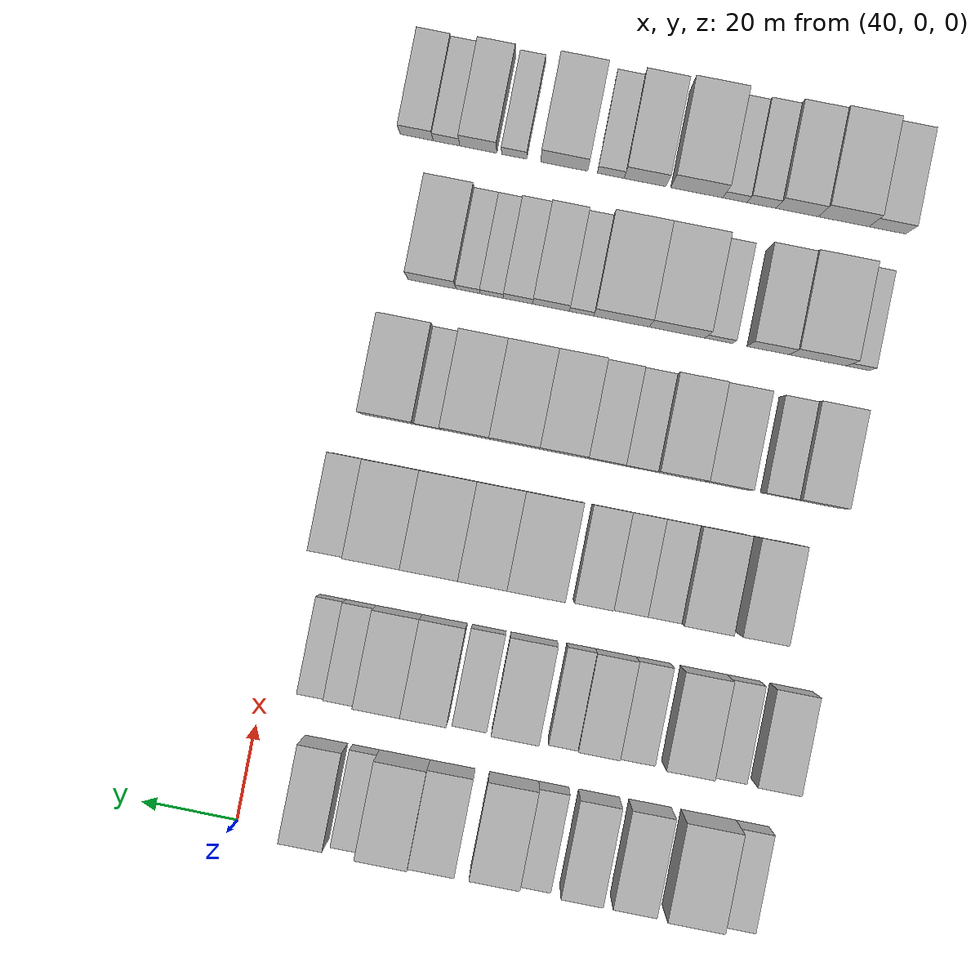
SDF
<sdf version="1.6">
 <world name="default">
  <model name="building_47">
   <static>1</static>
   <pose>50.0000 -104.0275 0 0.000000 0.000000 0.000000</pose>
   <link name="link">
    <pose>0 0 7.50 0 0 0</pose>
    <collision name="collision"><geometry><box><size>20.0000 6.8438 15.0000</size></box></geometry></collision>
    <visual name="visual">
     <cast_shadows>0</cast_shadows>
     <geometry><box><size>20.0000 6.8438 15.0000</size></box></geometry>
     <material>
      <script>
       <uri>model://HANNAS_wall/materials/scripts</uri>
       <uri>model://HANNAS_wall/materials/textures</uri>
       <name>vrc/HANNAS_wall</name>
      </script>
     </material>
    </visual>
   </link>
  </model>
  <model name="building_48">
   <static>1</static>
   <pose>50.0000 -94.8012 0 0.000000 0.000000 0.000000</pose>
   <link name="link">
    <pose>0 0 12.00 0 0 0</pose>
    <collision name="collision"><geometry><box><size>20.0000 11.6089 24.0000</size></box></geometry></collision>
    <visual name="visual">
     <cast_shadows>0</cast_shadows>
     <geometry><box><size>20.0000 11.6089 24.0000</size></box></geometry>
     <material>
      <script>
       <uri>model://HANNAS_wall/materials/scripts</uri>
       <uri>model://HANNAS_wall/materials/textures</uri>
       <name>vrc/HANNAS_wall</name>
      </script>
     </material>
    </visual>
   </link>
  </model>
  <model name="building_49">
   <static>1</static>
   <pose>50.0000 -82.5573 0 0.000000 0.000000 0.000000</pose>
   <link name="link">
    <pose>0 0 10.50 0 0 0</pose>
    <collision name="collision"><geometry><box><size>20.0000 8.8788 21.0000</size></box></geometry></collision>
    <visual name="visual">
     <cast_shadows>0</cast_shadows>
     <geometry><box><size>20.0000 8.8788 21.0000</size></box></geometry>
     <material>
      <script>
       <uri>model://HANNAS_wall/materials/scripts</uri>
       <uri>model://HANNAS_wall/materials/textures</uri>
       <name>vrc/HANNAS_wall</name>
      </script>
     </material>
    </visual>
   </link>
  </model>
  <model name="building_50">
   <static>1</static>
   <pose>50.0000 -71.8427 0 0.000000 0.000000 0.000000</pose>
   <link name="link">
    <pose>0 0 10.50 0 0 0</pose>
    <collision name="collision"><geometry><box><size>20.0000 8.5504 21.0000</size></box></geometry></collision>
    <visual name="visual">
     <cast_shadows>0</cast_shadows>
     <geometry><box><size>20.0000 8.5504 21.0000</size></box></geometry>
     <material>
      <script>
       <uri>model://HANNAS_wall/materials/scripts</uri>
       <uri>model://HANNAS_wall/materials/textures</uri>
       <name>vrc/HANNAS_wall</name>
      </script>
     </material>
    </visual>
   </link>
  </model>
  <model name="building_51">
   <static>1</static>
   <pose>50.0000 -62.4116 0 0.000000 0.000000 0.000000</pose>
   <link name="link">
    <pose>0 0 7.50 0 0 0</pose>
    <collision name="collision"><geometry><box><size>20.0000 6.3117 15.0000</size></box></geometry></collision>
    <visual name="visual">
     <cast_shadows>0</cast_shadows>
     <geometry><box><size>20.0000 6.3117 15.0000</size></box></geometry>
     <material>
      <script>
       <uri>model://HANNAS_wall/materials/scripts</uri>
       <uri>model://HANNAS_wall/materials/textures</uri>
       <name>vrc/HANNAS_wall</name>
      </script>
     </material>
    </visual>
   </link>
  </model>
  <model name="building_52">
   <static>1</static>
   <pose>50.0000 -54.0903 0 0.000000 0.000000 0.000000</pose>
   <link name="link">
    <pose>0 0 10.50 0 0 0</pose>
    <collision name="collision"><geometry><box><size>20.0000 10.3308 21.0000</size></box></geometry></collision>
    <visual name="visual">
     <cast_shadows>0</cast_shadows>
     <geometry><box><size>20.0000 10.3308 21.0000</size></box></geometry>
     <material>
      <script>
       <uri>model://HANNAS_wall/materials/scripts</uri>
       <uri>model://HANNAS_wall/materials/textures</uri>
       <name>vrc/HANNAS_wall</name>
      </script>
     </material>
    </visual>
   </link>
  </model>
  <model name="building_53">
   <static>1</static>
   <pose>50.0000 -41.2274 0 0.000000 0.000000 0.000000</pose>
   <link name="link">
    <pose>0 0 10.50 0 0 0</pose>
    <collision name="collision"><geometry><box><size>20.0000 9.3950 21.0000</size></box></geometry></collision>
    <visual name="visual">
     <cast_shadows>0</cast_shadows>
     <geometry><box><size>20.0000 9.3950 21.0000</size></box></geometry>
     <material>
      <script>
       <uri>model://HANNAS_wall/materials/scripts</uri>
       <uri>model://HANNAS_wall/materials/textures</uri>
       <name>vrc/HANNAS_wall</name>
      </script>
     </material>
    </visual>
   </link>
  </model>
  <model name="building_54">
   <static>1</static>
   <pose>50.0000 -31.1987 0 0.000000 0.000000 0.000000</pose>
   <link name="link">
    <pose>0 0 12.00 0 0 0</pose>
    <collision name="collision"><geometry><box><size>20.0000 10.6625 24.0000</size></box></geometry></collision>
    <visual name="visual">
     <cast_shadows>0</cast_shadows>
     <geometry><box><size>20.0000 10.6625 24.0000</size></box></geometry>
     <material>
      <script>
       <uri>model://HANNAS_wall/materials/scripts</uri>
       <uri>model://HANNAS_wall/materials/textures</uri>
       <name>vrc/HANNAS_wall</name>
      </script>
     </material>
    </visual>
   </link>
  </model>
  <model name="building_55">
   <static>1</static>
   <pose>50.0000 -23.0566 0 0.000000 0.000000 0.000000</pose>
   <link name="link">
    <pose>0 0 6.00 0 0 0</pose>
    <collision name="collision"><geometry><box><size>20.0000 5.6216 12.0000</size></box></geometry></collision>
    <visual name="visual">
     <cast_shadows>0</cast_shadows>
     <geometry><box><size>20.0000 5.6216 12.0000</size></box></geometry>
     <material>
      <script>
       <uri>model://HANNAS_wall/materials/scripts</uri>
       <uri>model://HANNAS_wall/materials/textures</uri>
       <name>vrc/HANNAS_wall</name>
      </script>
     </material>
    </visual>
   </link>
  </model>
  <model name="building_56">
   <static>1</static>
   <pose>50.0000 -14.7755 0 0.000000 0.000000 0.000000</pose>
   <link name="link">
    <pose>0 0 10.50 0 0 0</pose>
    <collision name="collision"><geometry><box><size>20.0000 8.9406 21.0000</size></box></geometry></collision>
    <visual name="visual">
     <cast_shadows>0</cast_shadows>
     <geometry><box><size>20.0000 8.9406 21.0000</size></box></geometry>
     <material>
      <script>
       <uri>model://HANNAS_wall/materials/scripts</uri>
       <uri>model://HANNAS_wall/materials/textures</uri>
       <name>vrc/HANNAS_wall</name>
      </script>
     </material>
    </visual>
   </link>
  </model>
  <model name="building_158">
   <static>1</static>
   <pose>79.0000 -106.3740 0 0.000000 0.000000 0.000000</pose>
   <link name="link">
    <pose>0 0 9.00 0 0 0</pose>
    <collision name="collision"><geometry><box><size>20.0000 8.9425 18.0000</size></box></geometry></collision>
    <visual name="visual">
     <cast_shadows>0</cast_shadows>
     <geometry><box><size>20.0000 8.9425 18.0000</size></box></geometry>
     <material>
      <script>
       <uri>model://HANNAS_wall/materials/scripts</uri>
       <uri>model://HANNAS_wall/materials/textures</uri>
       <name>vrc/HANNAS_wall</name>
      </script>
     </material>
    </visual>
   </link>
  </model>
  <model name="building_159">
   <static>1</static>
   <pose>79.0000 -96.4477 0 0.000000 0.000000 0.000000</pose>
   <link name="link">
    <pose>0 0 7.50 0 0 0</pose>
    <collision name="collision"><geometry><box><size>20.0000 6.9102 15.0000</size></box></geometry></collision>
    <visual name="visual">
     <cast_shadows>0</cast_shadows>
     <geometry><box><size>20.0000 6.9102 15.0000</size></box></geometry>
     <material>
      <script>
       <uri>model://HANNAS_wall/materials/scripts</uri>
       <uri>model://HANNAS_wall/materials/textures</uri>
       <name>vrc/HANNAS_wall</name>
      </script>
     </material>
    </visual>
   </link>
  </model>
  <model name="building_160">
   <static>1</static>
   <pose>79.0000 -88.0792 0 0.000000 0.000000 0.000000</pose>
   <link name="link">
    <pose>0 0 10.50 0 0 0</pose>
    <collision name="collision"><geometry><box><size>20.0000 9.8268 21.0000</size></box></geometry></collision>
    <visual name="visual">
     <cast_shadows>0</cast_shadows>
     <geometry><box><size>20.0000 9.8268 21.0000</size></box></geometry>
     <material>
      <script>
       <uri>model://HANNAS_wall/materials/scripts</uri>
       <uri>model://HANNAS_wall/materials/textures</uri>
       <name>vrc/HANNAS_wall</name>
      </script>
     </material>
    </visual>
   </link>
  </model>
  <model name="building_161">
   <static>1</static>
   <pose>79.0000 -77.5541 0 0.000000 0.000000 0.000000</pose>
   <link name="link">
    <pose>0 0 7.50 0 0 0</pose>
    <collision name="collision"><geometry><box><size>20.0000 7.2233 15.0000</size></box></geometry></collision>
    <visual name="visual">
     <cast_shadows>0</cast_shadows>
     <geometry><box><size>20.0000 7.2233 15.0000</size></box></geometry>
     <material>
      <script>
       <uri>model://HANNAS_wall/materials/scripts</uri>
       <uri>model://HANNAS_wall/materials/textures</uri>
       <name>vrc/HANNAS_wall</name>
      </script>
     </material>
    </visual>
   </link>
  </model>
  <model name="building_162">
   <static>1</static>
   <pose>79.0000 -69.6732 0 0.000000 0.000000 0.000000</pose>
   <link name="link">
    <pose>0 0 9.00 0 0 0</pose>
    <collision name="collision"><geometry><box><size>20.0000 8.5386 18.0000</size></box></geometry></collision>
    <visual name="visual">
     <cast_shadows>0</cast_shadows>
     <geometry><box><size>20.0000 8.5386 18.0000</size></box></geometry>
     <material>
      <script>
       <uri>model://HANNAS_wall/materials/scripts</uri>
       <uri>model://HANNAS_wall/materials/textures</uri>
       <name>vrc/HANNAS_wall</name>
      </script>
     </material>
    </visual>
   </link>
  </model>
  <model name="building_163">
   <static>1</static>
   <pose>79.0000 -62.3945 0 0.000000 0.000000 0.000000</pose>
   <link name="link">
    <pose>0 0 7.50 0 0 0</pose>
    <collision name="collision"><geometry><box><size>20.0000 6.0186 15.0000</size></box></geometry></collision>
    <visual name="visual">
     <cast_shadows>0</cast_shadows>
     <geometry><box><size>20.0000 6.0186 15.0000</size></box></geometry>
     <material>
      <script>
       <uri>model://HANNAS_wall/materials/scripts</uri>
       <uri>model://HANNAS_wall/materials/textures</uri>
       <name>vrc/HANNAS_wall</name>
      </script>
     </material>
    </visual>
   </link>
  </model>
  <model name="building_164">
   <static>1</static>
   <pose>79.0000 -52.5461 0 0.000000 0.000000 0.000000</pose>
   <link name="link">
    <pose>0 0 10.50 0 0 0</pose>
    <collision name="collision"><geometry><box><size>20.0000 9.6782 21.0000</size></box></geometry></collision>
    <visual name="visual">
     <cast_shadows>0</cast_shadows>
     <geometry><box><size>20.0000 9.6782 21.0000</size></box></geometry>
     <material>
      <script>
       <uri>model://HANNAS_wall/materials/scripts</uri>
       <uri>model://HANNAS_wall/materials/textures</uri>
       <name>vrc/HANNAS_wall</name>
      </script>
     </material>
    </visual>
   </link>
  </model>
  <model name="building_165">
   <static>1</static>
   <pose>79.0000 -43.1634 0 0.000000 0.000000 0.000000</pose>
   <link name="link">
    <pose>0 0 7.50 0 0 0</pose>
    <collision name="collision"><geometry><box><size>20.0000 7.0872 15.0000</size></box></geometry></collision>
    <visual name="visual">
     <cast_shadows>0</cast_shadows>
     <geometry><box><size>20.0000 7.0872 15.0000</size></box></geometry>
     <material>
      <script>
       <uri>model://HANNAS_wall/materials/scripts</uri>
       <uri>model://HANNAS_wall/materials/textures</uri>
       <name>vrc/HANNAS_wall</name>
      </script>
     </material>
    </visual>
   </link>
  </model>
  <model name="building_166">
   <static>1</static>
   <pose>79.0000 -33.9154 0 0.000000 0.000000 0.000000</pose>
   <link name="link">
    <pose>0 0 10.50 0 0 0</pose>
    <collision name="collision"><geometry><box><size>20.0000 9.4089 21.0000</size></box></geometry></collision>
    <visual name="visual">
     <cast_shadows>0</cast_shadows>
     <geometry><box><size>20.0000 9.4089 21.0000</size></box></geometry>
     <material>
      <script>
       <uri>model://HANNAS_wall/materials/scripts</uri>
       <uri>model://HANNAS_wall/materials/textures</uri>
       <name>vrc/HANNAS_wall</name>
      </script>
     </material>
    </visual>
   </link>
  </model>
  <model name="building_167">
   <static>1</static>
   <pose>79.0000 -24.3999 0 0.000000 0.000000 0.000000</pose>
   <link name="link">
    <pose>0 0 10.50 0 0 0</pose>
    <collision name="collision"><geometry><box><size>20.0000 9.6222 21.0000</size></box></geometry></collision>
    <visual name="visual">
     <cast_shadows>0</cast_shadows>
     <geometry><box><size>20.0000 9.6222 21.0000</size></box></geometry>
     <material>
      <script>
       <uri>model://HANNAS_wall/materials/scripts</uri>
       <uri>model://HANNAS_wall/materials/textures</uri>
       <name>vrc/HANNAS_wall</name>
      </script>
     </material>
    </visual>
   </link>
  </model>
  <model name="building_168">
   <static>1</static>
   <pose>79.0000 -16.4338 0 0.000000 0.000000 0.000000</pose>
   <link name="link">
    <pose>0 0 7.50 0 0 0</pose>
    <collision name="collision"><geometry><box><size>20.0000 6.3099 15.0000</size></box></geometry></collision>
    <visual name="visual">
     <cast_shadows>0</cast_shadows>
     <geometry><box><size>20.0000 6.3099 15.0000</size></box></geometry>
     <material>
      <script>
       <uri>model://HANNAS_wall/materials/scripts</uri>
       <uri>model://HANNAS_wall/materials/textures</uri>
       <name>vrc/HANNAS_wall</name>
      </script>
     </material>
    </visual>
   </link>
  </model>
  <model name="building_169">
   <static>1</static>
   <pose>79.0000 -10.4634 0 0.000000 0.000000 0.000000</pose>
   <link name="link">
    <pose>0 0 6.00 0 0 0</pose>
    <collision name="collision"><geometry><box><size>20.0000 5.6307 12.0000</size></box></geometry></collision>
    <visual name="visual">
     <cast_shadows>0</cast_shadows>
     <geometry><box><size>20.0000 5.6307 12.0000</size></box></geometry>
     <material>
      <script>
       <uri>model://HANNAS_wall/materials/scripts</uri>
       <uri>model://HANNAS_wall/materials/textures</uri>
       <name>vrc/HANNAS_wall</name>
      </script>
     </material>
    </visual>
   </link>
  </model>
  <model name="building_273">
   <static>1</static>
   <pose>108.0000 -97.6003 0 0.000000 0.000000 0.000000</pose>
   <link name="link">
    <pose>0 0 10.50 0 0 0</pose>
    <collision name="collision"><geometry><box><size>20.0000 9.4315 21.0000</size></box></geometry></collision>
    <visual name="visual">
     <cast_shadows>0</cast_shadows>
     <geometry><box><size>20.0000 9.4315 21.0000</size></box></geometry>
     <material>
      <script>
       <uri>model://HANNAS_wall/materials/scripts</uri>
       <uri>model://HANNAS_wall/materials/textures</uri>
       <name>vrc/HANNAS_wall</name>
      </script>
     </material>
    </visual>
   </link>
  </model>
  <model name="building_274">
   <static>1</static>
   <pose>108.0000 -85.8701 0 0.000000 0.000000 0.000000</pose>
   <link name="link">
    <pose>0 0 12.00 0 0 0</pose>
    <collision name="collision"><geometry><box><size>20.0000 10.0287 24.0000</size></box></geometry></collision>
    <visual name="visual">
     <cast_shadows>0</cast_shadows>
     <geometry><box><size>20.0000 10.0287 24.0000</size></box></geometry>
     <material>
      <script>
       <uri>model://HANNAS_wall/materials/scripts</uri>
       <uri>model://HANNAS_wall/materials/textures</uri>
       <name>vrc/HANNAS_wall</name>
      </script>
     </material>
    </visual>
   </link>
  </model>
  <model name="building_275">
   <static>1</static>
   <pose>108.0000 -77.4149 0 0.000000 0.000000 0.000000</pose>
   <link name="link">
    <pose>0 0 7.50 0 0 0</pose>
    <collision name="collision"><geometry><box><size>20.0000 6.8818 15.0000</size></box></geometry></collision>
    <visual name="visual">
     <cast_shadows>0</cast_shadows>
     <geometry><box><size>20.0000 6.8818 15.0000</size></box></geometry>
     <material>
      <script>
       <uri>model://HANNAS_wall/materials/scripts</uri>
       <uri>model://HANNAS_wall/materials/textures</uri>
       <name>vrc/HANNAS_wall</name>
      </script>
     </material>
    </visual>
   </link>
  </model>
  <model name="building_276">
   <static>1</static>
   <pose>108.0000 -70.4315 0 0.000000 0.000000 0.000000</pose>
   <link name="link">
    <pose>0 0 7.50 0 0 0</pose>
    <collision name="collision"><geometry><box><size>20.0000 7.0849 15.0000</size></box></geometry></collision>
    <visual name="visual">
     <cast_shadows>0</cast_shadows>
     <geometry><box><size>20.0000 7.0849 15.0000</size></box></geometry>
     <material>
      <script>
       <uri>model://HANNAS_wall/materials/scripts</uri>
       <uri>model://HANNAS_wall/materials/textures</uri>
       <name>vrc/HANNAS_wall</name>
      </script>
     </material>
    </visual>
   </link>
  </model>
  <model name="building_277">
   <static>1</static>
   <pose>108.0000 -62.9031 0 0.000000 0.000000 0.000000</pose>
   <link name="link">
    <pose>0 0 9.00 0 0 0</pose>
    <collision name="collision"><geometry><box><size>20.0000 7.9720 18.0000</size></box></geometry></collision>
    <visual name="visual">
     <cast_shadows>0</cast_shadows>
     <geometry><box><size>20.0000 7.9720 18.0000</size></box></geometry>
     <material>
      <script>
       <uri>model://HANNAS_wall/materials/scripts</uri>
       <uri>model://HANNAS_wall/materials/textures</uri>
       <name>vrc/HANNAS_wall</name>
      </script>
     </material>
    </visual>
   </link>
  </model>
  <model name="building_278">
   <static>1</static>
   <pose>108.0000 -51.0551 0 0.000000 0.000000 0.000000</pose>
   <link name="link">
    <pose>0 0 12.00 0 0 0</pose>
    <collision name="collision"><geometry><box><size>20.0000 11.7241 24.0000</size></box></geometry></collision>
    <visual name="visual">
     <cast_shadows>0</cast_shadows>
     <geometry><box><size>20.0000 11.7241 24.0000</size></box></geometry>
     <material>
      <script>
       <uri>model://HANNAS_wall/materials/scripts</uri>
       <uri>model://HANNAS_wall/materials/textures</uri>
       <name>vrc/HANNAS_wall</name>
      </script>
     </material>
    </visual>
   </link>
  </model>
  <model name="building_279">
   <static>1</static>
   <pose>108.0000 -40.2306 0 0.000000 0.000000 0.000000</pose>
   <link name="link">
    <pose>0 0 12.00 0 0 0</pose>
    <collision name="collision"><geometry><box><size>20.0000 9.9248 24.0000</size></box></geometry></collision>
    <visual name="visual">
     <cast_shadows>0</cast_shadows>
     <geometry><box><size>20.0000 9.9248 24.0000</size></box></geometry>
     <material>
      <script>
       <uri>model://HANNAS_wall/materials/scripts</uri>
       <uri>model://HANNAS_wall/materials/textures</uri>
       <name>vrc/HANNAS_wall</name>
      </script>
     </material>
    </visual>
   </link>
  </model>
  <model name="building_280">
   <static>1</static>
   <pose>108.0000 -29.4153 0 0.000000 0.000000 0.000000</pose>
   <link name="link">
    <pose>0 0 12.00 0 0 0</pose>
    <collision name="collision"><geometry><box><size>20.0000 11.7057 24.0000</size></box></geometry></collision>
    <visual name="visual">
     <cast_shadows>0</cast_shadows>
     <geometry><box><size>20.0000 11.7057 24.0000</size></box></geometry>
     <material>
      <script>
       <uri>model://HANNAS_wall/materials/scripts</uri>
       <uri>model://HANNAS_wall/materials/textures</uri>
       <name>vrc/HANNAS_wall</name>
      </script>
     </material>
    </visual>
   </link>
  </model>
  <model name="building_281">
   <static>1</static>
   <pose>108.0000 -17.7863 0 0.000000 0.000000 0.000000</pose>
   <link name="link">
    <pose>0 0 12.00 0 0 0</pose>
    <collision name="collision"><geometry><box><size>20.0000 11.5524 24.0000</size></box></geometry></collision>
    <visual name="visual">
     <cast_shadows>0</cast_shadows>
     <geometry><box><size>20.0000 11.5524 24.0000</size></box></geometry>
     <material>
      <script>
       <uri>model://HANNAS_wall/materials/scripts</uri>
       <uri>model://HANNAS_wall/materials/textures</uri>
       <name>vrc/HANNAS_wall</name>
      </script>
     </material>
    </visual>
   </link>
  </model>
  <model name="building_282">
   <static>1</static>
   <pose>108.0000 -8.2903 0 0.000000 0.000000 0.000000</pose>
   <link name="link">
    <pose>0 0 9.00 0 0 0</pose>
    <collision name="collision"><geometry><box><size>20.0000 7.4397 18.0000</size></box></geometry></collision>
    <visual name="visual">
     <cast_shadows>0</cast_shadows>
     <geometry><box><size>20.0000 7.4397 18.0000</size></box></geometry>
     <material>
      <script>
       <uri>model://HANNAS_wall/materials/scripts</uri>
       <uri>model://HANNAS_wall/materials/textures</uri>
       <name>vrc/HANNAS_wall</name>
      </script>
     </material>
    </visual>
   </link>
  </model>
  <model name="building_380">
   <static>1</static>
   <pose>137.0000 -104.0986 0 0.000000 0.000000 0.000000</pose>
   <link name="link">
    <pose>0 0 10.50 0 0 0</pose>
    <collision name="collision"><geometry><box><size>20.0000 9.6535 21.0000</size></box></geometry></collision>
    <visual name="visual">
     <cast_shadows>0</cast_shadows>
     <geometry><box><size>20.0000 9.6535 21.0000</size></box></geometry>
     <material>
      <script>
       <uri>model://HANNAS_wall/materials/scripts</uri>
       <uri>model://HANNAS_wall/materials/textures</uri>
       <name>vrc/HANNAS_wall</name>
      </script>
     </material>
    </visual>
   </link>
  </model>
  <model name="building_381">
   <static>1</static>
   <pose>137.0000 -95.8553 0 0.000000 0.000000 0.000000</pose>
   <link name="link">
    <pose>0 0 7.50 0 0 0</pose>
    <collision name="collision"><geometry><box><size>20.0000 6.8331 15.0000</size></box></geometry></collision>
    <visual name="visual">
     <cast_shadows>0</cast_shadows>
     <geometry><box><size>20.0000 6.8331 15.0000</size></box></geometry>
     <material>
      <script>
       <uri>model://HANNAS_wall/materials/scripts</uri>
       <uri>model://HANNAS_wall/materials/textures</uri>
       <name>vrc/HANNAS_wall</name>
      </script>
     </material>
    </visual>
   </link>
  </model>
  <model name="building_382">
   <static>1</static>
   <pose>137.0000 -84.8691 0 0.000000 0.000000 0.000000</pose>
   <link name="link">
    <pose>0 0 10.50 0 0 0</pose>
    <collision name="collision"><geometry><box><size>20.0000 9.1394 21.0000</size></box></geometry></collision>
    <visual name="visual">
     <cast_shadows>0</cast_shadows>
     <geometry><box><size>20.0000 9.1394 21.0000</size></box></geometry>
     <material>
      <script>
       <uri>model://HANNAS_wall/materials/scripts</uri>
       <uri>model://HANNAS_wall/materials/textures</uri>
       <name>vrc/HANNAS_wall</name>
      </script>
     </material>
    </visual>
   </link>
  </model>
  <model name="building_383">
   <static>1</static>
   <pose>137.0000 -75.3482 0 0.000000 0.000000 0.000000</pose>
   <link name="link">
    <pose>0 0 12.00 0 0 0</pose>
    <collision name="collision"><geometry><box><size>20.0000 9.9024 24.0000</size></box></geometry></collision>
    <visual name="visual">
     <cast_shadows>0</cast_shadows>
     <geometry><box><size>20.0000 9.9024 24.0000</size></box></geometry>
     <material>
      <script>
       <uri>model://HANNAS_wall/materials/scripts</uri>
       <uri>model://HANNAS_wall/materials/textures</uri>
       <name>vrc/HANNAS_wall</name>
      </script>
     </material>
    </visual>
   </link>
  </model>
  <model name="building_384">
   <static>1</static>
   <pose>137.0000 -67.0663 0 0.000000 0.000000 0.000000</pose>
   <link name="link">
    <pose>0 0 7.50 0 0 0</pose>
    <collision name="collision"><geometry><box><size>20.0000 6.6614 15.0000</size></box></geometry></collision>
    <visual name="visual">
     <cast_shadows>0</cast_shadows>
     <geometry><box><size>20.0000 6.6614 15.0000</size></box></geometry>
     <material>
      <script>
       <uri>model://HANNAS_wall/materials/scripts</uri>
       <uri>model://HANNAS_wall/materials/textures</uri>
       <name>vrc/HANNAS_wall</name>
      </script>
     </material>
    </visual>
   </link>
  </model>
  <model name="building_385">
   <static>1</static>
   <pose>137.0000 -59.8821 0 0.000000 0.000000 0.000000</pose>
   <link name="link">
    <pose>0 0 9.00 0 0 0</pose>
    <collision name="collision"><geometry><box><size>20.0000 7.7068 18.0000</size></box></geometry></collision>
    <visual name="visual">
     <cast_shadows>0</cast_shadows>
     <geometry><box><size>20.0000 7.7068 18.0000</size></box></geometry>
     <material>
      <script>
       <uri>model://HANNAS_wall/materials/scripts</uri>
       <uri>model://HANNAS_wall/materials/textures</uri>
       <name>vrc/HANNAS_wall</name>
      </script>
     </material>
    </visual>
   </link>
  </model>
  <model name="building_386">
   <static>1</static>
   <pose>137.0000 -51.0904 0 0.000000 0.000000 0.000000</pose>
   <link name="link">
    <pose>0 0 12.00 0 0 0</pose>
    <collision name="collision"><geometry><box><size>20.0000 9.8766 24.0000</size></box></geometry></collision>
    <visual name="visual">
     <cast_shadows>0</cast_shadows>
     <geometry><box><size>20.0000 9.8766 24.0000</size></box></geometry>
     <material>
      <script>
       <uri>model://HANNAS_wall/materials/scripts</uri>
       <uri>model://HANNAS_wall/materials/textures</uri>
       <name>vrc/HANNAS_wall</name>
      </script>
     </material>
    </visual>
   </link>
  </model>
  <model name="building_387">
   <static>1</static>
   <pose>137.0000 -40.9889 0 0.000000 0.000000 0.000000</pose>
   <link name="link">
    <pose>0 0 12.00 0 0 0</pose>
    <collision name="collision"><geometry><box><size>20.0000 10.3264 24.0000</size></box></geometry></collision>
    <visual name="visual">
     <cast_shadows>0</cast_shadows>
     <geometry><box><size>20.0000 10.3264 24.0000</size></box></geometry>
     <material>
      <script>
       <uri>model://HANNAS_wall/materials/scripts</uri>
       <uri>model://HANNAS_wall/materials/textures</uri>
       <name>vrc/HANNAS_wall</name>
      </script>
     </material>
    </visual>
   </link>
  </model>
  <model name="building_388">
   <static>1</static>
   <pose>137.0000 -30.7949 0 0.000000 0.000000 0.000000</pose>
   <link name="link">
    <pose>0 0 12.00 0 0 0</pose>
    <collision name="collision"><geometry><box><size>20.0000 10.0615 24.0000</size></box></geometry></collision>
    <visual name="visual">
     <cast_shadows>0</cast_shadows>
     <geometry><box><size>20.0000 10.0615 24.0000</size></box></geometry>
     <material>
      <script>
       <uri>model://HANNAS_wall/materials/scripts</uri>
       <uri>model://HANNAS_wall/materials/textures</uri>
       <name>vrc/HANNAS_wall</name>
      </script>
     </material>
    </visual>
   </link>
  </model>
  <model name="building_389">
   <static>1</static>
   <pose>137.0000 -23.0098 0 0.000000 0.000000 0.000000</pose>
   <link name="link">
    <pose>0 0 6.00 0 0 0</pose>
    <collision name="collision"><geometry><box><size>20.0000 5.5087 12.0000</size></box></geometry></collision>
    <visual name="visual">
     <cast_shadows>0</cast_shadows>
     <geometry><box><size>20.0000 5.5087 12.0000</size></box></geometry>
     <material>
      <script>
       <uri>model://HANNAS_wall/materials/scripts</uri>
       <uri>model://HANNAS_wall/materials/textures</uri>
       <name>vrc/HANNAS_wall</name>
      </script>
     </material>
    </visual>
   </link>
  </model>
  <model name="building_390">
   <static>1</static>
   <pose>137.0000 -14.7301 0 0.000000 0.000000 0.000000</pose>
   <link name="link">
    <pose>0 0 12.00 0 0 0</pose>
    <collision name="collision"><geometry><box><size>20.0000 11.0506 24.0000</size></box></geometry></collision>
    <visual name="visual">
     <cast_shadows>0</cast_shadows>
     <geometry><box><size>20.0000 11.0506 24.0000</size></box></geometry>
     <material>
      <script>
       <uri>model://HANNAS_wall/materials/scripts</uri>
       <uri>model://HANNAS_wall/materials/textures</uri>
       <name>vrc/HANNAS_wall</name>
      </script>
     </material>
    </visual>
   </link>
  </model>
  <model name="building_493">
   <static>1</static>
   <pose>166.0000 -107.1820 0 0.000000 0.000000 0.000000</pose>
   <link name="link">
    <pose>0 0 6.00 0 0 0</pose>
    <collision name="collision"><geometry><box><size>20.0000 4.9396 12.0000</size></box></geometry></collision>
    <visual name="visual">
     <cast_shadows>0</cast_shadows>
     <geometry><box><size>20.0000 4.9396 12.0000</size></box></geometry>
     <material>
      <script>
       <uri>model://HANNAS_wall/materials/scripts</uri>
       <uri>model://HANNAS_wall/materials/textures</uri>
       <name>vrc/HANNAS_wall</name>
      </script>
     </material>
    </visual>
   </link>
  </model>
  <model name="building_494">
   <static>1</static>
   <pose>166.0000 -98.7192 0 0.000000 0.000000 0.000000</pose>
   <link name="link">
    <pose>0 0 12.00 0 0 0</pose>
    <collision name="collision"><geometry><box><size>20.0000 11.9861 24.0000</size></box></geometry></collision>
    <visual name="visual">
     <cast_shadows>0</cast_shadows>
     <geometry><box><size>20.0000 11.9861 24.0000</size></box></geometry>
     <material>
      <script>
       <uri>model://HANNAS_wall/materials/scripts</uri>
       <uri>model://HANNAS_wall/materials/textures</uri>
       <name>vrc/HANNAS_wall</name>
      </script>
     </material>
    </visual>
   </link>
  </model>
  <model name="building_495">
   <static>1</static>
   <pose>166.0000 -88.3262 0 0.000000 0.000000 0.000000</pose>
   <link name="link">
    <pose>0 0 10.50 0 0 0</pose>
    <collision name="collision"><geometry><box><size>20.0000 8.7999 21.0000</size></box></geometry></collision>
    <visual name="visual">
     <cast_shadows>0</cast_shadows>
     <geometry><box><size>20.0000 8.7999 21.0000</size></box></geometry>
     <material>
      <script>
       <uri>model://HANNAS_wall/materials/scripts</uri>
       <uri>model://HANNAS_wall/materials/textures</uri>
       <name>vrc/HANNAS_wall</name>
      </script>
     </material>
    </visual>
   </link>
  </model>
  <model name="building_496">
   <static>1</static>
   <pose>166.0000 -78.0328 0 0.000000 0.000000 0.000000</pose>
   <link name="link">
    <pose>0 0 6.00 0 0 0</pose>
    <collision name="collision"><geometry><box><size>20.0000 5.7869 12.0000</size></box></geometry></collision>
    <visual name="visual">
     <cast_shadows>0</cast_shadows>
     <geometry><box><size>20.0000 5.7869 12.0000</size></box></geometry>
     <material>
      <script>
       <uri>model://HANNAS_wall/materials/scripts</uri>
       <uri>model://HANNAS_wall/materials/textures</uri>
       <name>vrc/HANNAS_wall</name>
      </script>
     </material>
    </visual>
   </link>
  </model>
  <model name="building_497">
   <static>1</static>
   <pose>166.0000 -69.2736 0 0.000000 0.000000 0.000000</pose>
   <link name="link">
    <pose>0 0 12.00 0 0 0</pose>
    <collision name="collision"><geometry><box><size>20.0000 11.7315 24.0000</size></box></geometry></collision>
    <visual name="visual">
     <cast_shadows>0</cast_shadows>
     <geometry><box><size>20.0000 11.7315 24.0000</size></box></geometry>
     <material>
      <script>
       <uri>model://HANNAS_wall/materials/scripts</uri>
       <uri>model://HANNAS_wall/materials/textures</uri>
       <name>vrc/HANNAS_wall</name>
      </script>
     </material>
    </visual>
   </link>
  </model>
  <model name="building_498">
   <static>1</static>
   <pose>166.0000 -57.5753 0 0.000000 0.000000 0.000000</pose>
   <link name="link">
    <pose>0 0 12.00 0 0 0</pose>
    <collision name="collision"><geometry><box><size>20.0000 11.6650 24.0000</size></box></geometry></collision>
    <visual name="visual">
     <cast_shadows>0</cast_shadows>
     <geometry><box><size>20.0000 11.6650 24.0000</size></box></geometry>
     <material>
      <script>
       <uri>model://HANNAS_wall/materials/scripts</uri>
       <uri>model://HANNAS_wall/materials/textures</uri>
       <name>vrc/HANNAS_wall</name>
      </script>
     </material>
    </visual>
   </link>
  </model>
  <model name="building_499">
   <static>1</static>
   <pose>166.0000 -49.2189 0 0.000000 0.000000 0.000000</pose>
   <link name="link">
    <pose>0 0 6.00 0 0 0</pose>
    <collision name="collision"><geometry><box><size>20.0000 5.0479 12.0000</size></box></geometry></collision>
    <visual name="visual">
     <cast_shadows>0</cast_shadows>
     <geometry><box><size>20.0000 5.0479 12.0000</size></box></geometry>
     <material>
      <script>
       <uri>model://HANNAS_wall/materials/scripts</uri>
       <uri>model://HANNAS_wall/materials/textures</uri>
       <name>vrc/HANNAS_wall</name>
      </script>
     </material>
    </visual>
   </link>
  </model>
  <model name="building_500">
   <static>1</static>
   <pose>166.0000 -42.8873 0 0.000000 0.000000 0.000000</pose>
   <link name="link">
    <pose>0 0 9.00 0 0 0</pose>
    <collision name="collision"><geometry><box><size>20.0000 7.6154 18.0000</size></box></geometry></collision>
    <visual name="visual">
     <cast_shadows>0</cast_shadows>
     <geometry><box><size>20.0000 7.6154 18.0000</size></box></geometry>
     <material>
      <script>
       <uri>model://HANNAS_wall/materials/scripts</uri>
       <uri>model://HANNAS_wall/materials/textures</uri>
       <name>vrc/HANNAS_wall</name>
      </script>
     </material>
    </visual>
   </link>
  </model>
  <model name="building_501">
   <static>1</static>
   <pose>166.0000 -36.0193 0 0.000000 0.000000 0.000000</pose>
   <link name="link">
    <pose>0 0 7.50 0 0 0</pose>
    <collision name="collision"><geometry><box><size>20.0000 6.1205 15.0000</size></box></geometry></collision>
    <visual name="visual">
     <cast_shadows>0</cast_shadows>
     <geometry><box><size>20.0000 6.1205 15.0000</size></box></geometry>
     <material>
      <script>
       <uri>model://HANNAS_wall/materials/scripts</uri>
       <uri>model://HANNAS_wall/materials/textures</uri>
       <name>vrc/HANNAS_wall</name>
      </script>
     </material>
    </visual>
   </link>
  </model>
  <model name="building_502">
   <static>1</static>
   <pose>166.0000 -30.4829 0 0.000000 0.000000 0.000000</pose>
   <link name="link">
    <pose>0 0 6.00 0 0 0</pose>
    <collision name="collision"><geometry><box><size>20.0000 4.9523 12.0000</size></box></geometry></collision>
    <visual name="visual">
     <cast_shadows>0</cast_shadows>
     <geometry><box><size>20.0000 4.9523 12.0000</size></box></geometry>
     <material>
      <script>
       <uri>model://HANNAS_wall/materials/scripts</uri>
       <uri>model://HANNAS_wall/materials/textures</uri>
       <name>vrc/HANNAS_wall</name>
      </script>
     </material>
    </visual>
   </link>
  </model>
  <model name="building_503">
   <static>1</static>
   <pose>166.0000 -25.4910 0 0.000000 0.000000 0.000000</pose>
   <link name="link">
    <pose>0 0 6.00 0 0 0</pose>
    <collision name="collision"><geometry><box><size>20.0000 5.0314 12.0000</size></box></geometry></collision>
    <visual name="visual">
     <cast_shadows>0</cast_shadows>
     <geometry><box><size>20.0000 5.0314 12.0000</size></box></geometry>
     <material>
      <script>
       <uri>model://HANNAS_wall/materials/scripts</uri>
       <uri>model://HANNAS_wall/materials/textures</uri>
       <name>vrc/HANNAS_wall</name>
      </script>
     </material>
    </visual>
   </link>
  </model>
  <model name="building_504">
   <static>1</static>
   <pose>166.0000 -17.9669 0 0.000000 0.000000 0.000000</pose>
   <link name="link">
    <pose>0 0 10.50 0 0 0</pose>
    <collision name="collision"><geometry><box><size>20.0000 10.0170 21.0000</size></box></geometry></collision>
    <visual name="visual">
     <cast_shadows>0</cast_shadows>
     <geometry><box><size>20.0000 10.0170 21.0000</size></box></geometry>
     <material>
      <script>
       <uri>model://HANNAS_wall/materials/scripts</uri>
       <uri>model://HANNAS_wall/materials/textures</uri>
       <name>vrc/HANNAS_wall</name>
      </script>
     </material>
    </visual>
   </link>
  </model>
  <model name="building_599">
   <static>1</static>
   <pose>195.0000 -107.6356 0 0.000000 0.000000 0.000000</pose>
   <link name="link">
    <pose>0 0 9.00 0 0 0</pose>
    <collision name="collision"><geometry><box><size>20.0000 7.7173 18.0000</size></box></geometry></collision>
    <visual name="visual">
     <cast_shadows>0</cast_shadows>
     <geometry><box><size>20.0000 7.7173 18.0000</size></box></geometry>
     <material>
      <script>
       <uri>model://HANNAS_wall/materials/scripts</uri>
       <uri>model://HANNAS_wall/materials/textures</uri>
       <name>vrc/HANNAS_wall</name>
      </script>
     </material>
    </visual>
   </link>
  </model>
  <model name="building_600">
   <static>1</static>
   <pose>195.0000 -98.4789 0 0.000000 0.000000 0.000000</pose>
   <link name="link">
    <pose>0 0 12.00 0 0 0</pose>
    <collision name="collision"><geometry><box><size>20.0000 10.5960 24.0000</size></box></geometry></collision>
    <visual name="visual">
     <cast_shadows>0</cast_shadows>
     <geometry><box><size>20.0000 10.5960 24.0000</size></box></geometry>
     <material>
      <script>
       <uri>model://HANNAS_wall/materials/scripts</uri>
       <uri>model://HANNAS_wall/materials/textures</uri>
       <name>vrc/HANNAS_wall</name>
      </script>
     </material>
    </visual>
   </link>
  </model>
  <model name="building_601">
   <static>1</static>
   <pose>195.0000 -88.7536 0 0.000000 0.000000 0.000000</pose>
   <link name="link">
    <pose>0 0 10.50 0 0 0</pose>
    <collision name="collision"><geometry><box><size>20.0000 8.8547 21.0000</size></box></geometry></collision>
    <visual name="visual">
     <cast_shadows>0</cast_shadows>
     <geometry><box><size>20.0000 8.8547 21.0000</size></box></geometry>
     <material>
      <script>
       <uri>model://HANNAS_wall/materials/scripts</uri>
       <uri>model://HANNAS_wall/materials/textures</uri>
       <name>vrc/HANNAS_wall</name>
      </script>
     </material>
    </visual>
   </link>
  </model>
  <model name="building_602">
   <static>1</static>
   <pose>195.0000 -81.2713 0 0.000000 0.000000 0.000000</pose>
   <link name="link">
    <pose>0 0 7.50 0 0 0</pose>
    <collision name="collision"><geometry><box><size>20.0000 6.1099 15.0000</size></box></geometry></collision>
    <visual name="visual">
     <cast_shadows>0</cast_shadows>
     <geometry><box><size>20.0000 6.1099 15.0000</size></box></geometry>
     <material>
      <script>
       <uri>model://HANNAS_wall/materials/scripts</uri>
       <uri>model://HANNAS_wall/materials/textures</uri>
       <name>vrc/HANNAS_wall</name>
      </script>
     </material>
    </visual>
   </link>
  </model>
  <model name="building_603">
   <static>1</static>
   <pose>195.0000 -75.6764 0 0.000000 0.000000 0.000000</pose>
   <link name="link">
    <pose>0 0 6.00 0 0 0</pose>
    <collision name="collision"><geometry><box><size>20.0000 5.0800 12.0000</size></box></geometry></collision>
    <visual name="visual">
     <cast_shadows>0</cast_shadows>
     <geometry><box><size>20.0000 5.0800 12.0000</size></box></geometry>
     <material>
      <script>
       <uri>model://HANNAS_wall/materials/scripts</uri>
       <uri>model://HANNAS_wall/materials/textures</uri>
       <name>vrc/HANNAS_wall</name>
      </script>
     </material>
    </visual>
   </link>
  </model>
  <model name="building_604">
   <static>1</static>
   <pose>195.0000 -67.6732 0 0.000000 0.000000 0.000000</pose>
   <link name="link">
    <pose>0 0 12.00 0 0 0</pose>
    <collision name="collision"><geometry><box><size>20.0000 10.9264 24.0000</size></box></geometry></collision>
    <visual name="visual">
     <cast_shadows>0</cast_shadows>
     <geometry><box><size>20.0000 10.9264 24.0000</size></box></geometry>
     <material>
      <script>
       <uri>model://HANNAS_wall/materials/scripts</uri>
       <uri>model://HANNAS_wall/materials/textures</uri>
       <name>vrc/HANNAS_wall</name>
      </script>
     </material>
    </visual>
   </link>
  </model>
  <model name="building_605">
   <static>1</static>
   <pose>195.0000 -56.8257 0 0.000000 0.000000 0.000000</pose>
   <link name="link">
    <pose>0 0 10.50 0 0 0</pose>
    <collision name="collision"><geometry><box><size>20.0000 8.7686 21.0000</size></box></geometry></collision>
    <visual name="visual">
     <cast_shadows>0</cast_shadows>
     <geometry><box><size>20.0000 8.7686 21.0000</size></box></geometry>
     <material>
      <script>
       <uri>model://HANNAS_wall/materials/scripts</uri>
       <uri>model://HANNAS_wall/materials/textures</uri>
       <name>vrc/HANNAS_wall</name>
      </script>
     </material>
    </visual>
   </link>
  </model>
  <model name="building_606">
   <static>1</static>
   <pose>195.0000 -49.6338 0 0.000000 0.000000 0.000000</pose>
   <link name="link">
    <pose>0 0 6.00 0 0 0</pose>
    <collision name="collision"><geometry><box><size>20.0000 5.6152 12.0000</size></box></geometry></collision>
    <visual name="visual">
     <cast_shadows>0</cast_shadows>
     <geometry><box><size>20.0000 5.6152 12.0000</size></box></geometry>
     <material>
      <script>
       <uri>model://HANNAS_wall/materials/scripts</uri>
       <uri>model://HANNAS_wall/materials/textures</uri>
       <name>vrc/HANNAS_wall</name>
      </script>
     </material>
    </visual>
   </link>
  </model>
  <model name="building_607">
   <static>1</static>
   <pose>195.0000 -39.9279 0 0.000000 0.000000 0.000000</pose>
   <link name="link">
    <pose>0 0 10.50 0 0 0</pose>
    <collision name="collision"><geometry><box><size>20.0000 9.7967 21.0000</size></box></geometry></collision>
    <visual name="visual">
     <cast_shadows>0</cast_shadows>
     <geometry><box><size>20.0000 9.7967 21.0000</size></box></geometry>
     <material>
      <script>
       <uri>model://HANNAS_wall/materials/scripts</uri>
       <uri>model://HANNAS_wall/materials/textures</uri>
       <name>vrc/HANNAS_wall</name>
      </script>
     </material>
    </visual>
   </link>
  </model>
  <model name="building_608">
   <static>1</static>
   <pose>195.0000 -29.3974 0 0.000000 0.000000 0.000000</pose>
   <link name="link">
    <pose>0 0 6.00 0 0 0</pose>
    <collision name="collision"><geometry><box><size>20.0000 5.2644 12.0000</size></box></geometry></collision>
    <visual name="visual">
     <cast_shadows>0</cast_shadows>
     <geometry><box><size>20.0000 5.2644 12.0000</size></box></geometry>
     <material>
      <script>
       <uri>model://HANNAS_wall/materials/scripts</uri>
       <uri>model://HANNAS_wall/materials/textures</uri>
       <name>vrc/HANNAS_wall</name>
      </script>
     </material>
    </visual>
   </link>
  </model>
  <model name="building_609">
   <static>1</static>
   <pose>195.0000 -21.8839 0 0.000000 0.000000 0.000000</pose>
   <link name="link">
    <pose>0 0 9.00 0 0 0</pose>
    <collision name="collision"><geometry><box><size>20.0000 7.7624 18.0000</size></box></geometry></collision>
    <visual name="visual">
     <cast_shadows>0</cast_shadows>
     <geometry><box><size>20.0000 7.7624 18.0000</size></box></geometry>
     <material>
      <script>
       <uri>model://HANNAS_wall/materials/scripts</uri>
       <uri>model://HANNAS_wall/materials/textures</uri>
       <name>vrc/HANNAS_wall</name>
      </script>
     </material>
    </visual>
   </link>
  </model>
  <model name="building_610">
   <static>1</static>
   <pose>195.0000 -15.2236 0 0.000000 0.000000 0.000000</pose>
   <link name="link">
    <pose>0 0 6.00 0 0 0</pose>
    <collision name="collision"><geometry><box><size>20.0000 5.5582 12.0000</size></box></geometry></collision>
    <visual name="visual">
     <cast_shadows>0</cast_shadows>
     <geometry><box><size>20.0000 5.5582 12.0000</size></box></geometry>
     <material>
      <script>
       <uri>model://HANNAS_wall/materials/scripts</uri>
       <uri>model://HANNAS_wall/materials/textures</uri>
       <name>vrc/HANNAS_wall</name>
      </script>
     </material>
    </visual>
   </link>
  </model>
  <model name="building_611">
   <static>1</static>
   <pose>195.0000 -8.9839 0 0.000000 0.000000 0.000000</pose>
   <link name="link">
    <pose>0 0 7.50 0 0 0</pose>
    <collision name="collision"><geometry><box><size>20.0000 6.9213 15.0000</size></box></geometry></collision>
    <visual name="visual">
     <cast_shadows>0</cast_shadows>
     <geometry><box><size>20.0000 6.9213 15.0000</size></box></geometry>
     <material>
      <script>
       <uri>model://HANNAS_wall/materials/scripts</uri>
       <uri>model://HANNAS_wall/materials/textures</uri>
       <name>vrc/HANNAS_wall</name>
      </script>
     </material>
    </visual>
   </link>
  </model>
 </world>
</sdf>
